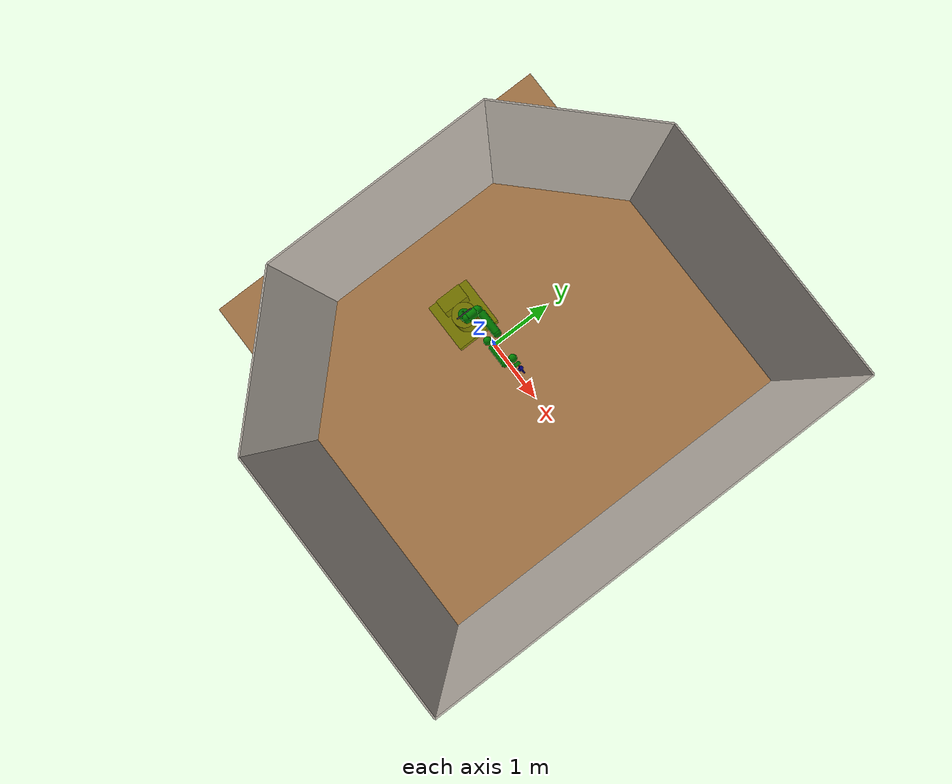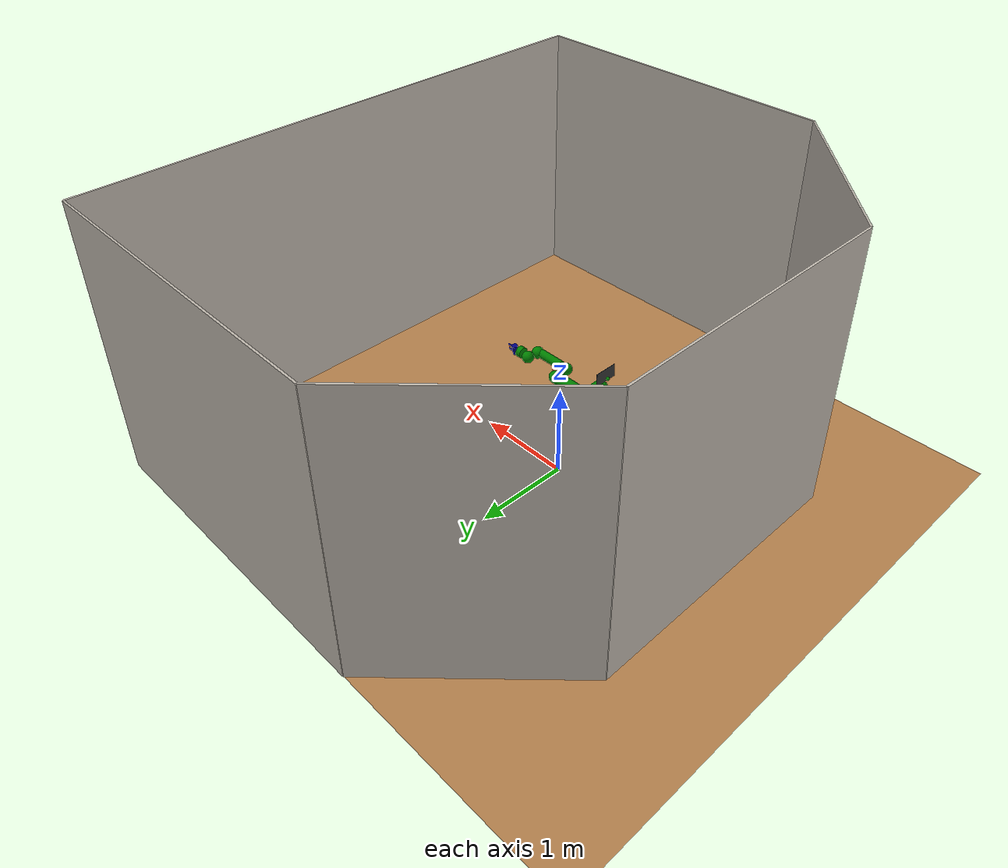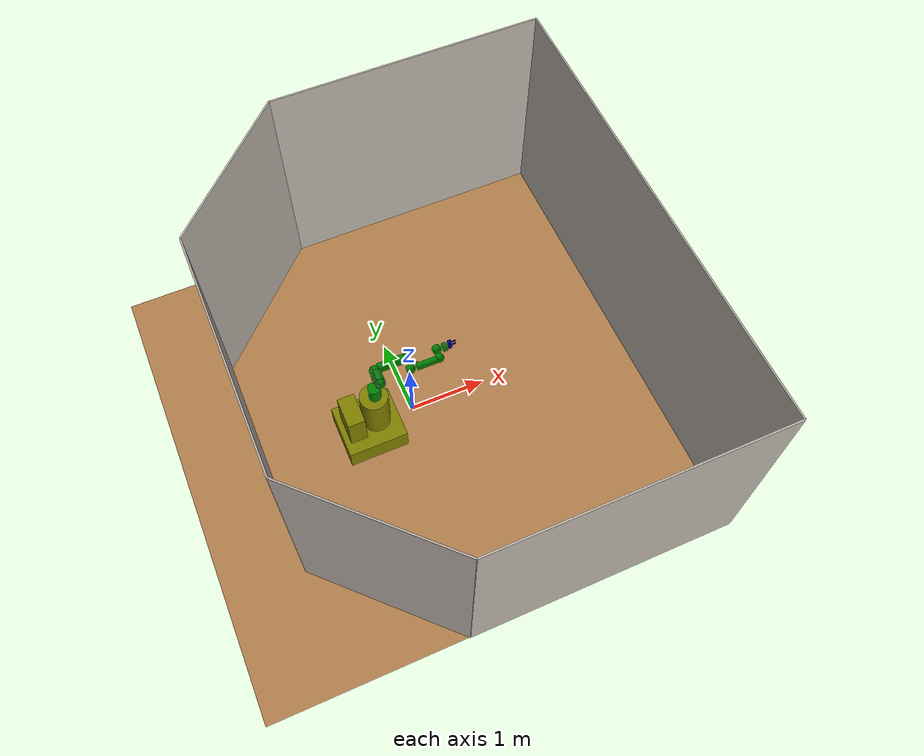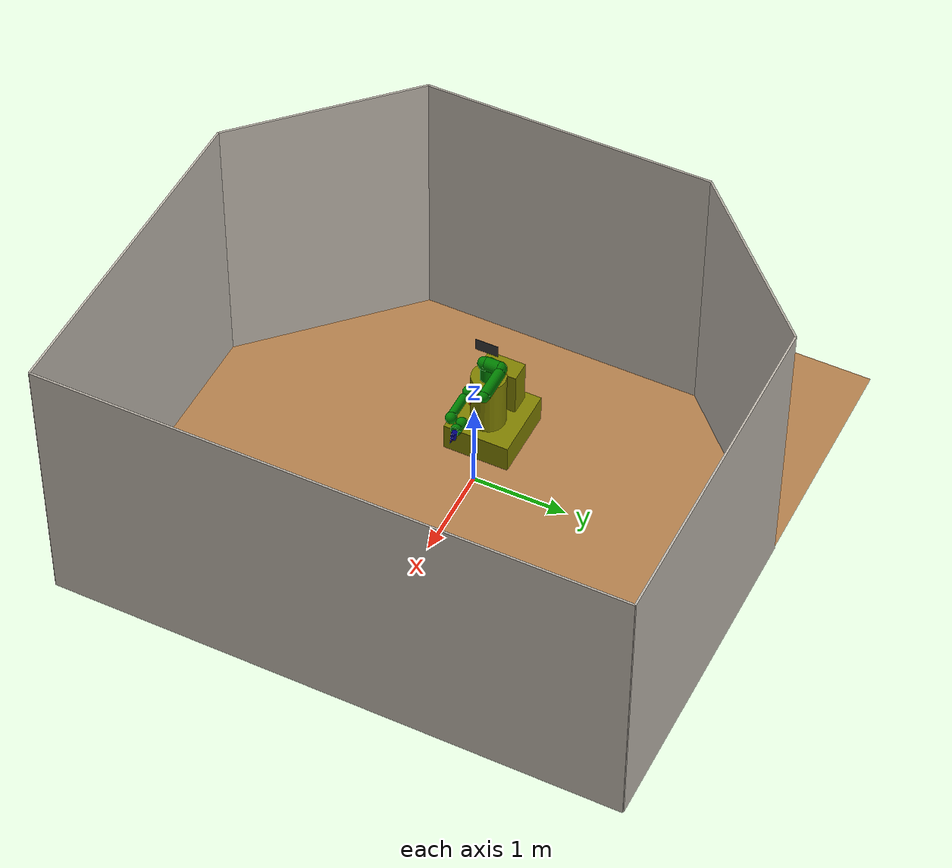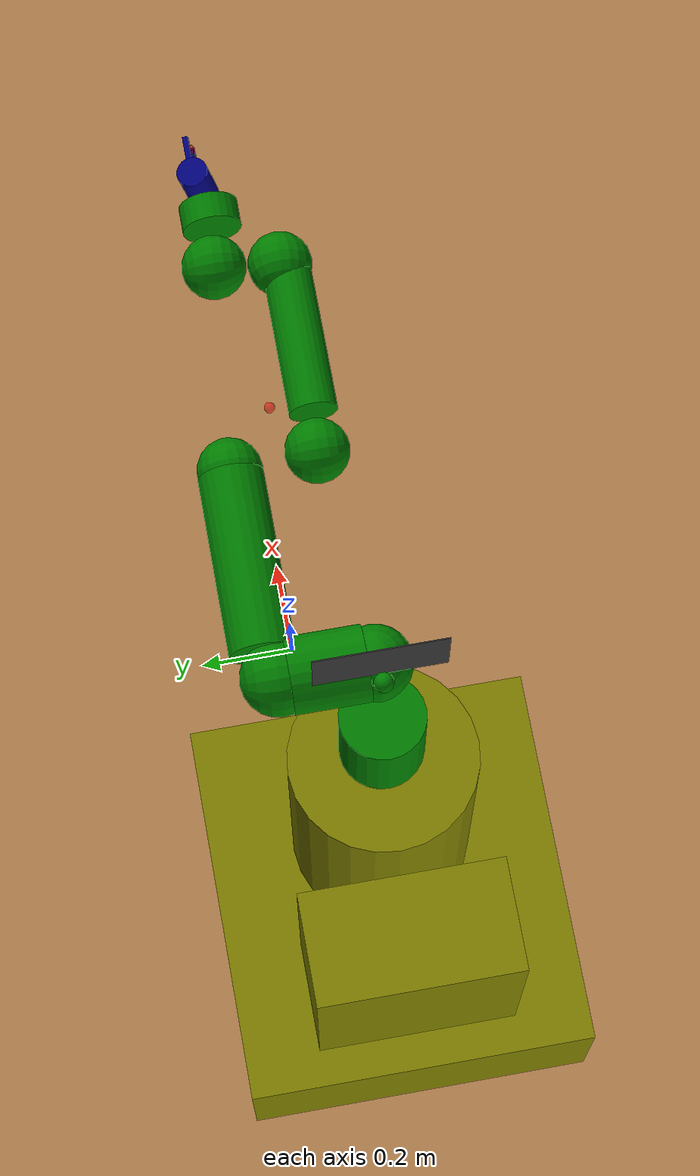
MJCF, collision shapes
<mujoco model="base">
    <compiler angle="radian" inertiagrouprange="0 0" meshdir="meshes/"/>
    <option cone="elliptic" density="1.2" impratio="20" timestep="0.002" viscosity="0.00002"/>
    <size nconmax="5000" njmax="5000"/>

    <asset>
        <texture builtin="gradient" height="256" rgb1=".9 .9 1." rgb2=".2 .3 .4" type="skybox" width="256"/>
        <texture file="/home/zhimin/code/robosuite/robosuite/models/assets/arenas/../textures/wood-tiles.png"
                 name="texplane" type="2d"/>
        <material name="floorplane" reflectance="0.01" shininess="0.0" specular="0.0" texrepeat="2 2" texture="texplane"
                  texuniform="true"/>

        <texture file="/home/zhimin/code/robosuite/robosuite/models/assets/arenas/../textures/steel-brushed.png"
                 name="tex-steel-brushed" type="cube"/>
        <material name="table_legs_metal" reflectance="0.8" shininess="0.8" texrepeat="1 1"
                  texture="tex-steel-brushed"/>

        <texture file="/home/zhimin/code/robosuite/robosuite/models/assets/arenas/../textures/cream-plaster.png"
                 name="tex-cream-plaster" type="2d"/>
        <material name="walls_mat" reflectance="0.0" shininess="0.1" specular="0.1" texrepeat="3 3"
                  texture="tex-cream-plaster" texuniform="true"/>

        <texture file="/home/zhimin/code/robosuite/robosuite/models/assets/arenas/../textures/light-wood.png"
                 name="tex-light-wood" type="2d"/>
        <texture file="/home/zhimin/code/robosuite/robosuite/models/assets/arenas/../textures/dark-wood.png"
                 name="tex-dark-wood" type="2d"/>
        <material name="light-wood" reflectance="0" texrepeat="15 15" texture="tex-light-wood" texuniform="true"/>
        <material name="dark-wood" reflectance="0" texrepeat="5 5" texture="tex-dark-wood" texuniform="true"/>
        <mesh file="/home/zhimin/code/robosuite/robosuite/models/assets/robots/sawyer/meshes/base.stl"
              name="robot0_base"/>
        <mesh file="/home/zhimin/code/robosuite/robosuite/models/assets/robots/sawyer/meshes/l0.stl" name="robot0_l0"/>
        <mesh file="/home/zhimin/code/robosuite/robosuite/models/assets/robots/sawyer/meshes/head.stl"
              name="robot0_head"/>
        <mesh file="/home/zhimin/code/robosuite/robosuite/models/assets/robots/sawyer/meshes/l1.stl" name="robot0_l1"/>
        <mesh file="/home/zhimin/code/robosuite/robosuite/models/assets/robots/sawyer/meshes/l2.stl" name="robot0_l2"/>
        <mesh file="/home/zhimin/code/robosuite/robosuite/models/assets/robots/sawyer/meshes/l3.stl" name="robot0_l3"/>
        <mesh file="/home/zhimin/code/robosuite/robosuite/models/assets/robots/sawyer/meshes/l4.stl" name="robot0_l4"/>
        <mesh file="/home/zhimin/code/robosuite/robosuite/models/assets/robots/sawyer/meshes/l5.stl" name="robot0_l5"/>
        <mesh file="/home/zhimin/code/robosuite/robosuite/models/assets/robots/sawyer/meshes/l6.stl" name="robot0_l6"/>
        <mesh file="/home/zhimin/code/robosuite/robosuite/models/assets/mounts/meshes/rethink_mount/pedestal.stl"
              name="mount0_pedestal"/>
        <mesh file="/home/zhimin/code/robosuite/robosuite/models/assets/grippers/meshes/rethink_gripper/electric_gripper_base.stl"
              name="gripper0_electric_gripper_base"/>
        <mesh file="/home/zhimin/code/robosuite/robosuite/models/assets/grippers/meshes/rethink_gripper/standard_narrow.stl"
              name="gripper0_standard_narrow"/>
        <mesh file="/home/zhimin/code/robosuite/robosuite/models/assets/grippers/meshes/rethink_gripper/half_round_tip.stl"
              name="gripper0_half_round_tip"/>
        <mesh file="/home/zhimin/code/robosuite/robosuite/models/assets/grippers/meshes/rethink_gripper/connector_plate.stl"
              name="gripper0_connector_plate"/>
        <mesh file="/home/zhimin/code/robosuite/robosuite/models/assets/objects/meshes/milk.stl"
              name="VisualMilk_milk_mesh" scale="0.9 0.9 0.9"/>
        <mesh file="/home/zhimin/code/robosuite/robosuite/models/assets/objects/meshes/bread.stl"
              name="VisualBread_bread_mesh" scale="0.8 0.8 0.8"/>
        <mesh file="/home/zhimin/code/robosuite/robosuite/models/assets/objects/meshes/cereal.stl"
              name="VisualCereal_cereal_mesh"/>
        <mesh file="/home/zhimin/code/robosuite/robosuite/models/assets/objects/meshes/can.stl"
              name="VisualCan_can_mesh"/>
        <mesh file="/home/zhimin/code/robosuite/robosuite/models/assets/objects/meshes/milk.stl" name="Milk_milk_mesh"
              scale="0.9 0.9 0.9"/>
        <texture file="/home/zhimin/code/robosuite/robosuite/models/assets/objects/../textures/ceramic.png"
                 name="Milk_tex-ceramic"/>
        <material name="Milk_ceramic" reflectance="0.5" texrepeat="1 1" texture="Milk_tex-ceramic" texuniform="true"/>
        <mesh file="/home/zhimin/code/robosuite/robosuite/models/assets/objects/meshes/bread.stl"
              name="Bread_bread_mesh" scale="0.8 0.8 0.8"/>
        <texture file="/home/zhimin/code/robosuite/robosuite/models/assets/objects/../textures/bread.png"
                 name="Bread_tex-bread" type="2d"/>
        <material name="Bread_bread" reflectance="0.7" texrepeat="15 15" texture="Bread_tex-bread" texuniform="true"/>
        <mesh file="/home/zhimin/code/robosuite/robosuite/models/assets/objects/meshes/cereal.stl"
              name="Cereal_cereal_mesh"/>
        <texture file="/home/zhimin/code/robosuite/robosuite/models/assets/objects/../textures/cereal.png"
                 name="Cereal_tex-cereal" rgb1="1 1 1" type="cube"/>
        <material name="Cereal_cereal" reflectance="0.5" texrepeat="1 1" texture="Cereal_tex-cereal"
                  texuniform="false"/>
        <mesh file="/home/zhimin/code/robosuite/robosuite/models/assets/objects/meshes/can.stl" name="Can_can_mesh"/>
        <texture file="/home/zhimin/code/robosuite/robosuite/models/assets/objects/../textures/can.png"
                 name="Can_tex-can"/>
        <material name="Can_coke" reflectance="0.7" texrepeat="5 5" texture="Can_tex-can" texuniform="true"/>
    </asset>

    <visual>
        <map znear="0.001"/>
    </visual>

    <actuator>
        <motor ctrllimited="true" ctrlrange="-80.0 80.0" joint="robot0_right_j0" name="robot0_right_j0"/>
        <motor ctrllimited="true" ctrlrange="-80.0 80.0" joint="robot0_right_j1" name="robot0_right_j1"/>
        <motor ctrllimited="true" ctrlrange="-40.0 40.0" joint="robot0_right_j2" name="robot0_right_j2"/>
        <motor ctrllimited="true" ctrlrange="-40.0 40.0" joint="robot0_right_j3" name="robot0_right_j3"/>
        <motor ctrllimited="true" ctrlrange="-9.0 9.0" joint="robot0_right_j4" name="robot0_right_j4"/>
        <motor ctrllimited="true" ctrlrange="-9.0 9.0" joint="robot0_right_j5" name="robot0_right_j5"/>
        <motor ctrllimited="true" ctrlrange="-9.0 9.0" joint="robot0_right_j6" name="robot0_right_j6"/>
    </actuator>

    <worldbody>
        <geom condim="3" material="floorplane" name="floor" pos="0.0 0.0 0.0" size="3 3 .125" type="plane"/>

        <geom conaffinity="0" contype="0" group="1" material="walls_mat" name="wall_leftcorner_visual"
              pos="-1.25 2.25 1.5" quat="0.6532815 0.6532815 0.2705981 0.2705981" size="1.06 1.5 0.01" type="box"/>
        <geom conaffinity="0" contype="0" group="1" material="walls_mat" name="wall_rightcorner_visual"
              pos="-1.25 -2.25 1.5" quat="0.6532815 0.6532815 -0.2705981 -0.2705981" size="1.06 1.5 0.01" type="box"/>
        <geom conaffinity="0" contype="0" group="1" material="walls_mat" name="wall_left_visual" pos="1.25 3.0 1.5"
              quat="0.7071 0.7071 0 0" size="1.75 1.5 0.01" type="box"/>
        <geom conaffinity="0" contype="0" group="1" material="walls_mat" name="wall_right_visual" pos="1.25 -3.0 1.5"
              quat="0.7071 -0.7071 0 0" size="1.75 1.5 0.01" type="box"/>
        <geom conaffinity="0" contype="0" group="1" material="walls_mat" name="wall_rear_visual" pos="-2.0 0.0 1.5"
              quat="0.5 0.5 0.5 0.5" size="1.5 1.5 0.01" type="box"/>
        <geom conaffinity="0" contype="0" group="1" material="walls_mat" name="wall_front_visual" pos="3.0 0.0 1.5"
              quat="0.5 0.5 -0.5 -0.5" size="3 1.5 0.01" type="box"/>

        <light castshadow="false" diffuse=".8 .8 .8" dir="0 -.15 -1" directional="false" pos="1.0 1.0 4.0"
               specular="0.3 0.3 0.3"/>
        <light castshadow="false" diffuse=".8 .8 .8" dir="0 -.15 -1" directional="false" pos="-3.0 -3.0 4.0"
               specular="0.3 0.3 0.3"/>

        <camera mode="fixed" name="frontview" pos="1.6 0.0 1.45" quat="0.56 0.43 0.43 0.56"/>

        <camera mode="fixed" name="birdview" pos="-0.2 0.0 3.0" quat="0.7071 0 0 0.7071"/>

        <camera mode="fixed" name="agentview" pos="1.0 0.0 1.75" quat="0.653 0.271 0.271 0.653"/>

        <body name="robot0_base" pos="-0.5 -0.1 0.912">
            <camera mode="fixed" name="robot0_robotview" pos="1.0 0 0.4" quat="0.653 0.271 0.271 0.653"/>
            <inertial diaginertia="0 0 0" mass="0" pos="0 0 0"/>

            <body name="robot0_right_arm_base_link" pos="0 0 0">
                <inertial diaginertia="0.00740351 0.00681776 0.00672942" mass="2.0687"
                          pos="-0.0006241 -2.8025e-05 0.065404" quat="-0.209285 0.674441 0.227335 0.670558"/>
                <geom conaffinity="0" contype="0" group="1" mesh="robot0_base" name="robot0_base_vis"
                      rgba="0.5 0.1 0.1 1" type="mesh"/>
                <geom name="robot0_base_col" pos="0 0 0.12" rgba="0 0.5 0 0.01" size="0.08 0.12" type="cylinder"/>
                <body name="robot0_right_j0" pos="0 0 0.08">
                    <inertial diaginertia="0.0651588 0.0510944 0.0186218" mass="5.3213" pos="0.024366 0.010969 0.14363"
                              quat="0.894823 0.00899958 -0.170275 0.412573"/>
                    <joint armature="5.0" axis="0 0 1" damping="0.1" frictionloss="0.1" limited="true"
                           name="robot0_right_j0" pos="0 0 0" range="-3.0503 3.0503"/>
                    <geom conaffinity="0" contype="0" group="1" mesh="robot0_l0" name="robot0_link0_visual"
                          rgba="0.5 0.1 0.1 1" type="mesh"/>
                    <geom name="robot0_link0_collision" pos="0.08 0 0.23" rgba="0 0.5 0 0.01" size="0.07"/>
                    <body name="robot0_head" pos="0 0 0.2965">
                        <inertial diaginertia="0.0118334 0.00827089 0.00496574" mass="1.5795"
                                  pos="0.0053207 -2.6549e-05 0.1021"
                                  quat="0.999993 7.08405e-05 -0.00359857 -0.000626247"/>
                        <geom conaffinity="0" contype="0" group="1" mesh="robot0_head" name="robot0_head_visual"
                              rgba="0.5 0.1 0.1 1" type="mesh"/>
                        <geom name="robot0_head_collision" pos="0 0 0.08" rgba="0 0.5 0 0.01" size="0.018"/>
                        <body name="robot0_screen" pos="0.03 0 0.105" quat="0.5 0.5 0.5 0.5">
                            <inertial diaginertia="1e-08 1e-08 1e-08" mass="0.0001" pos="0 0 0"/>
                            <geom conaffinity="0" contype="0" group="1" name="robot0_screen_visual" rgba="0.2 0.2 0.2 1"
                                  size="0.12 0.07 0.001" type="box"/>
                            <geom name="robot0_screen_collision" rgba="0 0.5 0 0.01" size="0.001"/>
                        </body>
                        <body name="robot0_head_camera" pos="0.0228027 0 0.216572"
                              quat="0.342813 -0.618449 0.618449 -0.342813">
                            <inertial diaginertia="0 0 0" mass="0" pos="0.0228027 0 0.216572"
                                      quat="0.342813 -0.618449 0.618449 -0.342813"/>
                        </body>
                    </body>
                    <body name="robot0_right_torso_itb" pos="-0.055 0 0.22" quat="0.707107 0 -0.707107 0">
                        <inertial diaginertia="1e-08 1e-08 1e-08" mass="0.0001" pos="0 0 0"/>
                    </body>
                    <body name="robot0_right_j1" pos="0.081 0.05 0.237" quat="0.5 -0.5 0.5 0.5">
                        <inertial diaginertia="0.0224339 0.0221624 0.0097097" mass="4.505"
                                  pos="-0.0030849 -0.026811 0.092521" quat="0.424888 0.891987 0.132364 -0.0794296"/>
                        <joint armature="2.5" axis="0 0 1" damping="0.1" frictionloss="0.1" limited="true"
                               name="robot0_right_j1" pos="0 0 0" range="-3.8095 2.2736"/>
                        <geom conaffinity="0" contype="0" group="1" mesh="robot0_l1" name="robot0_link1_visual"
                              rgba="0.5 0.1 0.1 1" type="mesh"/>
                        <geom name="robot0_link1_collision" pos="0 0 0.1225" rgba="0 0.5 0 0.01" size="0.07"/>
                        <body name="robot0_right_j2" pos="0 -0.14 0.1425" quat="0.707107 0.707107 0 0">
                            <inertial diaginertia="0.0257928 0.025506 0.00292515" mass="1.745"
                                      pos="-0.00016044 -0.014967 0.13582"
                                      quat="0.707831 -0.0524761 0.0516007 0.702537"/>
                            <joint armature="1.6666666666666667" axis="0 0 1" damping="0.1" frictionloss="0.1"
                                   limited="true" name="robot0_right_j2" pos="0 0 0" range="-3.0426 3.0426"/>
                            <geom conaffinity="0" contype="0" group="1" mesh="robot0_l2" name="robot0_link2_visual"
                                  rgba="0.5 0.1 0.1 1" type="mesh"/>
                            <geom name="robot0_link2_collision" pos="0 0 0.08" rgba="0 0.5 0 0.01" size="0.06 0.17"
                                  type="cylinder"/>
                            <body name="robot0_right_j3" pos="0 -0.042 0.26" quat="0.707107 -0.707107 0 0">
                                <inertial diaginertia="0.0102404 0.0096997 0.00369622" mass="2.5097"
                                          pos="-0.0048135 -0.0281 -0.084154"
                                          quat="0.902999 0.385391 -0.0880901 0.168247"/>
                                <joint armature="1.25" axis="0 0 1" damping="0.1" frictionloss="0.1" limited="true"
                                       name="robot0_right_j3" pos="0 0 0" range="-3.0439 3.0439"/>
                                <geom conaffinity="0" contype="0" group="1" mesh="robot0_l3" name="robot0_link3_visual"
                                      rgba="0.5 0.1 0.1 1" type="mesh"/>
                                <geom name="robot0_link3_collision" pos="0 -0.01 -0.12" rgba="0 0.5 0 0.01" size="0.06"/>
                                <body name="robot0_right_j4" pos="0 -0.125 -0.1265" quat="0.707107 0.707107 0 0">
                                    <inertial diaginertia="0.0136549 0.0135493 0.00127353" mass="1.1136"
                                              pos="-0.0018844 0.0069001 0.1341"
                                              quat="0.803612 0.031257 -0.0298334 0.593582"/>
                                    <joint armature="1.0" axis="0 0 1" damping="0.1" frictionloss="0.1" limited="true"
                                           name="robot0_right_j4" pos="0 0 0" range="-2.9761 2.9761"/>
                                    <geom conaffinity="0" contype="0" group="1" mesh="robot0_l4"
                                          name="robot0_link4_visual" rgba="0.5 0.1 0.1 1" type="mesh"/>
                                    <geom name="robot0_link4_collision" pos="0 0 0.11" rgba="0 0.5 0 0.01"
                                          size="0.045 0.15" type="cylinder"/>
                                    <body name="robot0_right_arm_itb" pos="-0.055 0 0.075"
                                          quat="0.707107 0 -0.707107 0">
                                        <inertial diaginertia="1e-08 1e-08 1e-08" mass="0.0001" pos="0 0 0"/>
                                    </body>
                                    <body name="robot0_right_j5" pos="0 0.031 0.275" quat="0.707107 -0.707107 0 0">
                                        <inertial diaginertia="0.00474131 0.00422857 0.00190672" mass="1.5625"
                                                  pos="0.0061133 -0.023697 0.076416"
                                                  quat="0.404076 0.9135 0.0473125 0.00158335"/>
                                        <joint armature="0.8333333333333334" axis="0 0 1" damping="0.2"
                                               frictionloss="0.1" limited="true" name="robot0_right_j5" pos="0 0 0"
                                               range="-2.9761 2.9761"/>
                                        <geom conaffinity="0" contype="0" group="1" mesh="robot0_l5"
                                              name="robot0_link5_visual" rgba="0.5 0.1 0.1 1" type="mesh"/>
                                        <geom name="robot0_link5_collision" pos="0 0 0.1" rgba="0 0.5 0 0.01" size="0.06"/>
                                        <body name="robot0_right_hand_camera" pos="0.039552 -0.033 0.0695"
                                              quat="0.707107 0 0.707107 0">
                                            <inertial diaginertia="0 0 0" mass="0" pos="0.039552 -0.033 0.0695"
                                                      quat="0.707107 0 0.707107 0"/>
                                        </body>
                                        <body name="robot0_right_wrist" pos="0 0 0.10541" quat="0.707107 0.707107 0 0">
                                            <inertial diaginertia="0 0 0" mass="0" pos="0 0 0.10541"
                                                      quat="0.707107 0.707107 0 0"/>
                                        </body>
                                        <body name="robot0_right_j6" pos="0 -0.11 0.1053"
                                              quat="0.0616248 0.06163 -0.704416 0.704416">
                                            <inertial diaginertia="0.000360258 0.000311068 0.000214974" mass="0.3292"
                                                      pos="-8.0726e-06 0.0085838 -0.0049566"
                                                      quat="0.479044 0.515636 -0.513069 0.491322"/>
                                            <joint armature="0.7142857142857143" axis="0 0 1" damping="0.1"
                                                   frictionloss="0.1" limited="true" name="robot0_right_j6" pos="0 0 0"
                                                   range="-4.7124 4.7124"/>
                                            <geom conaffinity="0" contype="0" group="1" mesh="robot0_l6"
                                                  name="robot0_link6_visual" rgba="0.5 0.1 0.1 1" type="mesh"/>
                                            <geom name="robot0_link6_collision" pos="0 0.015 -0.01" rgba="0 0.5 0 0.01"
                                                  size="0.055 0.025" type="cylinder"/>
                                            <body name="robot0_right_hand" pos="0 0 0.024" quat="0.707105 0 0 0.707108">

                                                <camera fovy="75" mode="fixed" name="robot0_eye_in_hand" pos="0.05 0 0"
                                                        quat="0 0.707108 0.707108 0"/>

                                                <body name="EE" pos="0 0 0">
                                                    <site group="1" name="gripper0_ft_frame" pos="0 0 0" rgba="1 0 0 1"
                                                          size="0.01 0.01 0.01" type="sphere"/>

                                                    <inertial diaginertia="3e-08 2e-08 2e-08" mass="0.3" pos="0 0 0"
                                                              quat="-0.5 0.5 0.5 0.5"/>
                                                    <geom conaffinity="0" contype="0" group="1"
                                                          mesh="gripper0_connector_plate"
                                                          name="gripper0_connector_plate" pos="0 0 0.0018"
                                                          rgba="0.499 0.499 0.499 1" type="mesh"/>
                                                    <geom conaffinity="0" contype="0" group="1"
                                                          mesh="gripper0_electric_gripper_base"
                                                          name="gripper0_electric_gripper_base" pos="0 0 0.0194"
                                                          rgba="0.499 0.499 0.499 1" type="mesh"/>
                                                    <geom group="0" name="gripper0_gripper_base_col"
                                                          pos="0.004 0.0 0.04" quat="0 0 0.707107 0.707107"
                                                          rgba="0 0 0.5 0.01" size="0.029 0.05" type="cylinder"/>

                                                    <body name="gripper0_eef" pos="0 0 0.109" quat="0.707105 0 0 -0.707105">
                                                        <site group="1" name="ee_site" pos="0 0 0"
                                                              rgba="1 0 0 0.5" size="0.01 0.01 0.01" type="sphere"/>
                                                        <site group="1" name="gripper0_ee_x" pos="0.1 0 0"
                                                              quat="0.707105  0 0.707108 0 " rgba="1 0 0 0"
                                                              size="0.005 .1" type="cylinder"/>
                                                        <site group="1" name="gripper0_ee_y" pos="0 0.1 0"
                                                              quat="0.707105 0.707108 0 0" rgba="0 1 0 0"
                                                              size="0.005 .1" type="cylinder"/>
                                                        <site group="1" name="gripper0_ee_z" pos="0 0 0.1"
                                                              quat="1 0 0 0" rgba="0 0 1 0" size="0.005 .1"
                                                              type="cylinder"/>

                                                        <site group="1" name="gripper0_grip_site_cylinder" pos="0 0 0"
                                                              rgba="0 1 0 0.3" size="0.005 0.01" type="cylinder"/>
                                                    </body>
                                                    <body name="gripper0_l_finger" pos="0 0.01 0.0444">
                                                        <inertial diaginertia="0.01 0.01 0.01" mass="0.02" pos="0 0 0"
                                                                  quat="0 0 0 -1"/>
                                                        <joint armature="1.0" axis="0 1 0" damping="100"
                                                               frictionloss="1.0" limited="true"
                                                               name="gripper0_l_finger_joint" pos="0 0 0"
                                                               range="-0.0115 0.020833" type="slide"/>
                                                        <geom conaffinity="0" contype="0" group="1"
                                                              mesh="gripper0_standard_narrow" name="gripper0_l_finger"
                                                              quat="0 0 0 -1" rgba="0.499 0.499 0.499 1" type="mesh"/>
                                                        <geom conaffinity="1" contype="0" friction="0 0 0" group="0"
                                                              name="gripper0_l_finger_g0" pos="0 0.01725 0.04"
                                                              quat="0 0 0 -1" rgba="0 0 0.5 1"
                                                              size="0.005 0.00675 0.0375" type="box"/>
                                                        <geom conaffinity="1" contype="0" friction="0 0 0" group="0"
                                                              name="gripper0_l_finger_g1" pos="-0.005 -0.003 0.0083"
                                                              quat="0 0 0 -1" rgba="0 0 0.5 1" size="0.005 0.025 0.0085"
                                                              type="box"/>
                                                        <body name="gripper0_l_finger_tip" pos="0 0.01725 0.075">
                                                            <inertial diaginertia="0.01 0.01 0.01" mass="0.01"
                                                                      pos="0 0 0" quat="0 0 0 1"/>
                                                            <geom conaffinity="0" contype="0" group="1"
                                                                  mesh="gripper0_half_round_tip"
                                                                  name="gripper0_l_fingertip_g0_vis" quat="0 0 0 1"
                                                                  rgba="0.499 0.499 0.499 1" type="mesh"/>
                                                            <geom conaffinity="1" contype="0" friction="0 0 0" group="0"
                                                                  name="gripper0_l_fingertip_g0" pos="0 -0.0045 -0.015"
                                                                  quat="0 0 0 -1" rgba="0 0 0.5 1"
                                                                  size="0.004 0.004 0.0185" type="box"/>
                                                            <geom conaffinity="1" contype="0" friction="0 0 0"
                                                                  name="gripper0_l_fingerpad_g0" pos="0 -0.0047 -0.017"
                                                                  rgba="0 0 0.5 1" size="0.0035 0.004 0.0165"
                                                                  type="box"/>
                                                        </body>
                                                    </body>
                                                    <body name="gripper0_r_finger" pos="0 -0.01 0.0444">
                                                        <inertial diaginertia="0.01 0.01 0.01" mass="0.02" pos="0 0 0"/>
                                                        <joint armature="1.0" axis="0 1 0" damping="100"
                                                               frictionloss="1.0" limited="true"
                                                               name="gripper0_r_finger_joint" pos="0 0 0"
                                                               range="-0.020833 0.0115" type="slide"/>
                                                        <geom conaffinity="0" contype="0" group="1"
                                                              mesh="gripper0_standard_narrow" name="gripper0_r_finger"
                                                              rgba="0.499 0.499 0.499 1" type="mesh"/>
                                                        <geom conaffinity="1" contype="0" friction="0 0 0" group="0"
                                                              name="gripper0_r_finger_g0" pos="0 -0.01725 0.04"
                                                              rgba="0 0 0.5 1" size="0.005 0.00675 0.0375" type="box"/>
                                                        <geom conaffinity="1" contype="0" friction="0 0 0" group="0"
                                                              name="gripper0_r_finger_g1" pos="0.005 0.003 0.0083"
                                                              rgba="0 0 0.5 1" size="0.005 0.025 0.0085" type="box"/>
                                                        <body name="gripper0_r_finger_tip" pos="0 -0.01725 0.075">
                                                            <inertial diaginertia="0.01 0.01 0.01" mass="0.01"
                                                                      pos="0 0 0"/>
                                                            <geom conaffinity="0" contype="0" group="1"
                                                                  mesh="gripper0_half_round_tip"
                                                                  name="gripper0_r_fingertip_g0_vis"
                                                                  rgba="0.499 0.499 0.499 1" type="mesh"/>
                                                            <geom conaffinity="1" contype="0" friction="0 0 0" group="0"
                                                                  name="gripper0_r_fingertip_g0" pos="0 0.0045 -0.015"
                                                                  rgba="0 0 0.5 1" size="0.004 0.004 0.0185"
                                                                  type="box"/>
                                                            <geom conaffinity="1" contype="0" friction="0 0 0"
                                                                  name="gripper0_r_fingerpad_g0" pos="0 0.0047 -0.017"
                                                                  rgba="0 0 0.5 1" size="0.0035 0.004 0.0165"
                                                                  type="box"/>
                                                        </body>
                                                    </body>
                                                </body>
                                            </body>
                                        </body>
                                    </body>
                                    <body name="robot0_right_l4_2" pos="0 0 0">
                                        <inertial diaginertia="1e-08 1e-08 1e-08" mass="1e-08" pos="1e-08 1e-08 1e-08"
                                                  quat="0.820473 0.339851 -0.17592 0.424708"/>
                                        <geom name="robot0_right_l4_2" pos="0 0.01 0.26" rgba="0 0.5 0 1" size="0.06"/>
                                    </body>
                                </body>
                            </body>
                            <body name="robot0_right_l2_2" pos="0 0 0">
                                <inertial diaginertia="1e-08 1e-08 1e-08" mass="1e-08" pos="1e-08 1e-08 1e-08"
                                          quat="0.820473 0.339851 -0.17592 0.424708"/>
                                <geom name="robot0_right_l2_2" pos="0 0 0.26" rgba="0 0.5 0 1" size="0.06"/>
                            </body>
                        </body>
                        <body name="robot0_right_l1_2" pos="0 0 0">
                            <inertial diaginertia="1e-08 1e-08 1e-08" mass="1e-08" pos="1e-08 1e-08 1e-08"
                                      quat="0.820473 0.339851 -0.17592 0.424708"/>
                            <geom name="robot0_right_l1_2" pos="0 0 0.035" rgba="0 0.5 0 1" size="0.07 0.07"
                                  type="cylinder"/>
                        </body>
                    </body>
                </body>
            </body>
            <body name="mount0_base" pos="0.0 0.0 0.01">
                <body name="mount0_controller_box" pos="0 0 0">
                    <inertial diaginertia="1.71363 1.27988 0.809981" mass="46.64" pos="-0.325 0 -0.38"/>
                    <geom name="mount0_controller_box_col" pos="-0.325 0 -0.38" rgba="0.5 0.5 0 0.01" size="0.11 0.2 0.265"
                          type="box"/>
                </body>
                <body name="mount0_pedestal_feet" pos="0 0 0">
                    <inertial diaginertia="8.16095 9.59375 15.0785" mass="167.09" pos="-0.1225 0 -0.758"/>
                    <geom name="mount0_pedestal_feet_col" pos="-0.1225 0 -0.758" rgba="0.5 0.5 0 0.01"
                          size="0.385 0.35 0.155" type="box"/>
                </body>
                <body name="mount0_torso" pos="0 0 0">
                    <inertial diaginertia="1e-08 1e-08 1e-08" mass="0.0001" pos="0 0 0"/>
                    <geom conaffinity="0" contype="0" group="1" name="mount0_torso_vis" pos="0 0 -0.05"
                          rgba="0.2 0.2 0.2 1" size="0.05 0.05 0.05" type="box"/>
                </body>
                <body name="mount0_pedestal" pos="0 0 0">
                    <inertial diaginertia="6.0869 5.81635 4.20915" mass="60.864" pos="0 0 0"
                              quat="0.659267 -0.259505 -0.260945 0.655692"/>
                    <geom conaffinity="0" contype="0" group="1" mesh="mount0_pedestal" name="mount0_pedestal_vis"
                          rgba="0.2 0.2 0.2 1" type="mesh"/>
                    <geom name="mount0_pedestal_col" pos="-0.02 0 -0.29" rgba="0.5 0.5 0 0.01" size="0.18 0.31"
                          type="cylinder"/>
                </body>
            </body>
        </body>

        <site group="1" name="target_ee_site" pos="0.1 0.0 1.2" rgba="1 0 0 0.5" size="0.01 0.01 0.01" type="sphere"/>
<!--                  material="Milk_ceramic" mesh="Milk_milk_mesh" name="Milk_g0_visual" pos="0 0 0"-->
<!--                  material="Bread_bread" mesh="Bread_bread_mesh" name="Bread_g0_visual" pos="0 0 0"-->
<!--                  material="Cereal_cereal" mesh="Cereal_cereal_mesh" name="Cereal_g0_visual" pos="0 0 0"-->
<!--                  material="Can_coke" mesh="Can_can_mesh" name="Can_g0_visual" pos="0 0 0" solimp="0.998 0.998 0.001"-->
    </worldbody>

    <equality>
    </equality>
    <sensor>
        <force name="gripper0_force_ee" site="gripper0_ft_frame"/>
        <torque name="gripper0_torque_ee" site="gripper0_ft_frame"/>
    </sensor>
    <tendon/>
    <contact/>
    <default/>
</mujoco>
